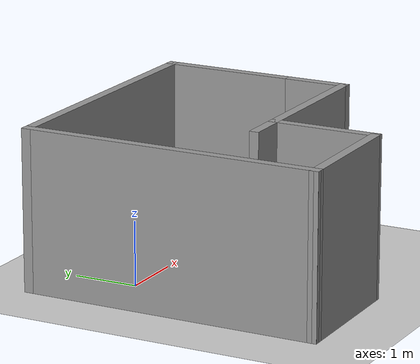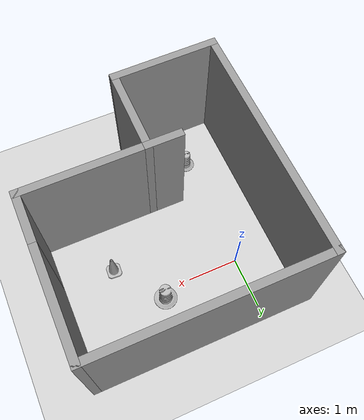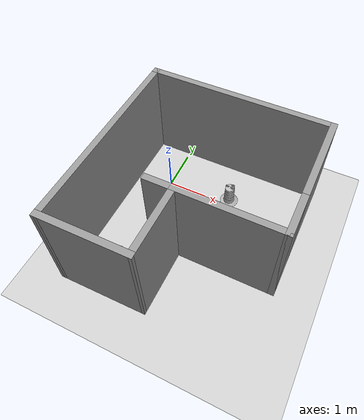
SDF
<sdf version="1.7">
 <world name="default">
  <light name="sun" type="directional">
   <pose>0 0 10 0 -0 0</pose>
   <diffuse>0.8 0.8 0.8 1</diffuse>
   <specular>0.2 0.2 0.2 1</specular>
   <attenuation>
    <range>1000</range>
    <constant>0.9</constant>
    <linear>0.01</linear>
    <quadratic>0.001</quadratic>
   </attenuation>
   <direction>-0.5 0.1 -0.9</direction>
   <spot><inner_angle>0</inner_angle><outer_angle>0</outer_angle><falloff>0</falloff></spot>
  </light>
  <model name="ground_plane">
   <static>1</static>
   <link name="link">
    <collision name="collision">
     <geometry><plane><normal>0 0 1</normal><size>100 100</size></plane></geometry>
     <surface><friction><ode><mu>100</mu><mu2>50</mu2></ode></friction></surface>
    </collision>
    <visual name="visual">
     <cast_shadows>0</cast_shadows>
     <geometry><plane><normal>0 0 1</normal><size>100 100</size></plane></geometry>
     <material>
      <script><uri>file://media/materials/scripts/gazebo.material</uri><name>Gazebo/Grey</name></script>
     </material>
    </visual>
   </link>
  </model>
  <gravity>0 0 -9.8</gravity>
  <magnetic_field>6e-06 2.3e-05 -4.2e-05</magnetic_field>
  <atmosphere type="adiabatic"/>
  <physics type="ode">
   <max_step_size>0.001</max_step_size>
   <real_time_factor>1</real_time_factor>
   <real_time_update_rate>1000</real_time_update_rate>
  </physics>
  <scene><ambient>0.4 0.4 0.4 1</ambient><background>0.7 0.7 0.7 1</background><shadows>1</shadows></scene>
  <spherical_coordinates>
   <surface_model>EARTH_WGS84</surface_model>
   <latitude_deg>0</latitude_deg>
   <longitude_deg>0</longitude_deg>
   <elevation>0</elevation>
   <heading_deg>0</heading_deg>
  </spherical_coordinates>
  <model name="my_env">
   <pose>1.24848 -1.0733 0 0 -0 0</pose>
   <link name="Wall_0">
    <collision name="Wall_0_Collision">
     <geometry><box><size>1.75 0.15 2.5</size></box></geometry>
     <pose>0 0 1.25 0 -0 0</pose>
    </collision>
    <visual name="Wall_0_Visual">
     <pose>0 0 1.25 0 -0 0</pose>
     <geometry><box><size>1.75 0.15 2.5</size></box></geometry>
     <material>
      <script><uri>file://media/materials/scripts/gazebo.material</uri><name>Gazebo/Grey</name></script>
      <ambient>1 1 1 1</ambient>
     </material>
     <meta><layer>0</layer></meta>
    </visual>
    <pose>-0.174561 -1.47601 0 0 -0 1.5708</pose>
   </link>
   <link name="Wall_1">
    <collision name="Wall_1_Collision">
     <geometry><box><size>2.5 0.15 2.5</size></box></geometry>
     <pose>0 0 1.25 0 -0 0</pose>
    </collision>
    <visual name="Wall_1_Visual">
     <pose>0 0 1.25 0 -0 0</pose>
     <geometry><box><size>2.5 0.15 2.5</size></box></geometry>
     <material>
      <script><uri>file://media/materials/scripts/gazebo.material</uri><name>Gazebo/Grey</name></script>
      <ambient>1 1 1 1</ambient>
     </material>
     <meta><layer>0</layer></meta>
    </visual>
    <pose>1.00044 -0.676011 0 0 -0 0</pose>
   </link>
   <link name="Wall_10">
    <collision name="Wall_10_Collision">
     <geometry><box><size>0.75 0.15 2.5</size></box></geometry>
     <pose>0 0 1.25 0 -0 0</pose>
    </collision>
    <visual name="Wall_10_Visual">
     <pose>0 0 1.25 0 -0 0</pose>
     <geometry><box><size>0.75 0.15 2.5</size></box></geometry>
     <material>
      <script><uri>file://media/materials/scripts/gazebo.material</uri><name>Gazebo/Grey</name></script>
      <ambient>1 1 1 1</ambient>
     </material>
     <meta><layer>0</layer></meta>
    </visual>
    <pose>-0.474561 -0.676011 0 0 -0 3.14159</pose>
   </link>
   <link name="Wall_2">
    <collision name="Wall_2_Collision">
     <geometry><box><size>1.02645 0.15 2.5</size></box></geometry>
     <pose>0 0 1.25 0 -0 0</pose>
    </collision>
    <visual name="Wall_2_Visual">
     <pose>0 0 1.25 0 -0 0</pose>
     <geometry><box><size>1.02645 0.15 2.5</size></box></geometry>
     <material>
      <script><uri>file://media/materials/scripts/gazebo.material</uri><name>Gazebo/Grey</name></script>
      <ambient>1 1 1 1</ambient>
     </material>
     <meta><layer>0</layer></meta>
    </visual>
    <pose>2.17544 -0.237786 0 0 -0 1.5708</pose>
   </link>
   <link name="Wall_5">
    <collision name="Wall_5_Collision">
     <geometry><box><size>2.25 0.15 2.5</size></box></geometry>
     <pose>0 0 1.25 0 -0 0</pose>
    </collision>
    <visual name="Wall_5_Visual">
     <pose>0 0 1.25 0 -0 0</pose>
     <geometry><box><size>2.25 0.15 2.5</size></box></geometry>
     <material>
      <script><uri>file://media/materials/scripts/gazebo.material</uri><name>Gazebo/Grey</name></script>
      <ambient>1 1 1 1</ambient>
     </material>
     <meta><layer>0</layer></meta>
    </visual>
    <pose>2.17544 1.25044 0 0 -0 1.5708</pose>
   </link>
   <link name="Wall_6">
    <collision name="Wall_6_Collision">
     <geometry><box><size>4.5 0.15 2.5</size></box></geometry>
     <pose>0 0 1.25 0 -0 0</pose>
    </collision>
    <visual name="Wall_6_Visual">
     <pose>0 0 1.25 0 -0 0</pose>
     <geometry><box><size>4.5 0.15 2.5</size></box></geometry>
     <material>
      <script><uri>file://media/materials/scripts/gazebo.material</uri><name>Gazebo/Grey</name></script>
      <ambient>1 1 1 1</ambient>
     </material>
     <meta><layer>0</layer></meta>
    </visual>
    <pose>0.000439 2.30044 0 0 -0 3.14159</pose>
   </link>
   <link name="Wall_7">
    <collision name="Wall_7_Collision">
     <geometry><box><size>4.75 0.15 2.5</size></box></geometry>
     <pose>0 0 1.25 0 -0 0</pose>
    </collision>
    <visual name="Wall_7_Visual">
     <pose>0 0 1.25 0 -0 0</pose>
     <geometry><box><size>4.75 0.15 2.5</size></box></geometry>
     <material>
      <script><uri>file://media/materials/scripts/gazebo.material</uri><name>Gazebo/Grey</name></script>
      <ambient>1 1 1 1</ambient>
     </material>
     <meta><layer>0</layer></meta>
    </visual>
    <pose>-2.17456 0.000439 0 0 -0 -1.5708</pose>
   </link>
   <link name="Wall_8">
    <collision name="Wall_8_Collision">
     <geometry><box><size>2.15014 0.15 2.5</size></box></geometry>
     <pose>0 0 1.25 0 -0 0</pose>
    </collision>
    <visual name="Wall_8_Visual">
     <pose>0 0 1.25 0 -0 0</pose>
     <geometry><box><size>2.15014 0.15 2.5</size></box></geometry>
     <material>
      <script><uri>file://media/materials/scripts/gazebo.material</uri><name>Gazebo/Grey</name></script>
      <ambient>1 1 1 1</ambient>
     </material>
     <meta><layer>0</layer></meta>
    </visual>
    <pose>-1.17456 -2.28779 0 0 -0 0.011774</pose>
   </link>
   <static>1</static>
  </model>
  <model name="Construction Barrel">
   <link name="link">
    <inertial>
     <pose>0 0 0.4 0 -0 0</pose>
     <mass>500</mass>
     <inertia><ixx>51.2096</ixx><iyy>51.2096</iyy><izz>25</izz><ixy>0</ixy><ixz>0</ixz><iyz>0</iyz></inertia>
    </inertial>
    <collision name="collision">
     <geometry>
      <mesh>
       <uri>model://construction_barrel/meshes/construction_barrel.dae</uri>
       <scale>0.445151 0.445151 0.445151</scale>
      </mesh>
     </geometry>
    </collision>
    <visual name="visual">
     <geometry>
      <mesh>
       <uri>model://construction_barrel/meshes/construction_barrel.dae</uri>
       <scale>0.445151 0.445151 0.445151</scale>
      </mesh>
     </geometry>
    </visual>
   </link>
   <pose>1.5865 0.150543 -0 -4e-06 -2e-06 -8e-06</pose>
  </model>
  <model name="Construction Barrel_0">
   <link name="link">
    <inertial>
     <pose>0 0 0.4 0 -0 0</pose>
     <mass>500</mass>
     <inertia><ixx>51.2096</ixx><iyy>51.2096</iyy><izz>25</izz><ixy>0</ixy><ixz>0</ixz><iyz>0</iyz></inertia>
    </inertial>
    <collision name="collision">
     <geometry>
      <mesh>
       <uri>model://construction_barrel/meshes/construction_barrel.dae</uri>
       <scale>0.352814 0.352814 0.352814</scale>
      </mesh>
     </geometry>
    </collision>
    <visual name="visual">
     <geometry>
      <mesh>
       <uri>model://construction_barrel/meshes/construction_barrel.dae</uri>
       <scale>0.352814 0.352814 0.352814</scale>
      </mesh>
     </geometry>
    </visual>
   </link>
   <pose>-0.010345 -2.46142 -0 -1e-06 -1e-06 -0.096438</pose>
  </model>
  <model name="Construction Cone_1">
   <link name="link">
    <collision name="collision">
     <geometry>
      <mesh>
       <scale>5.55373 5.55373 5.55373</scale>
       <uri>model://construction_cone/meshes/construction_cone.dae</uri>
      </mesh>
     </geometry>
    </collision>
    <visual name="visual">
     <geometry>
      <mesh>
       <scale>5.55373 5.55373 5.55373</scale>
       <uri>model://construction_cone/meshes/construction_cone.dae</uri>
      </mesh>
     </geometry>
    </visual>
    <inertial>
     <inertia><ixx>1</ixx><ixy>0</ixy><ixz>0</ixz><iyy>1</iyy><iyz>0</iyz><izz>1</izz></inertia>
     <mass>1</mass>
    </inertial>
   </link>
   <pose>2.3129 -0.773621 -0 0 0 -0.067785</pose>
  </model>
 </world>
</sdf>
